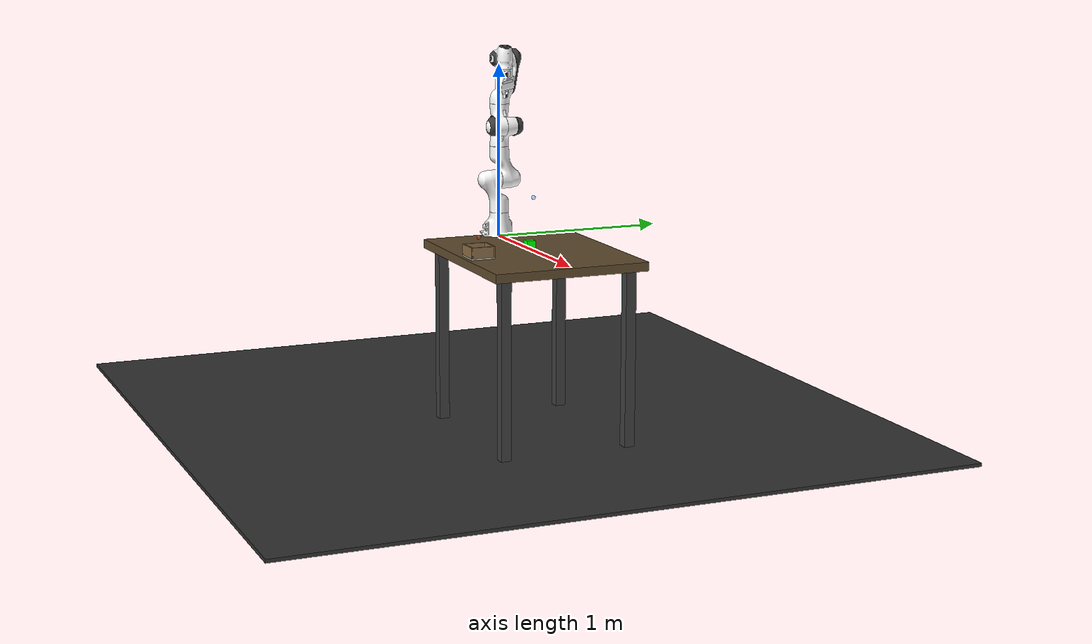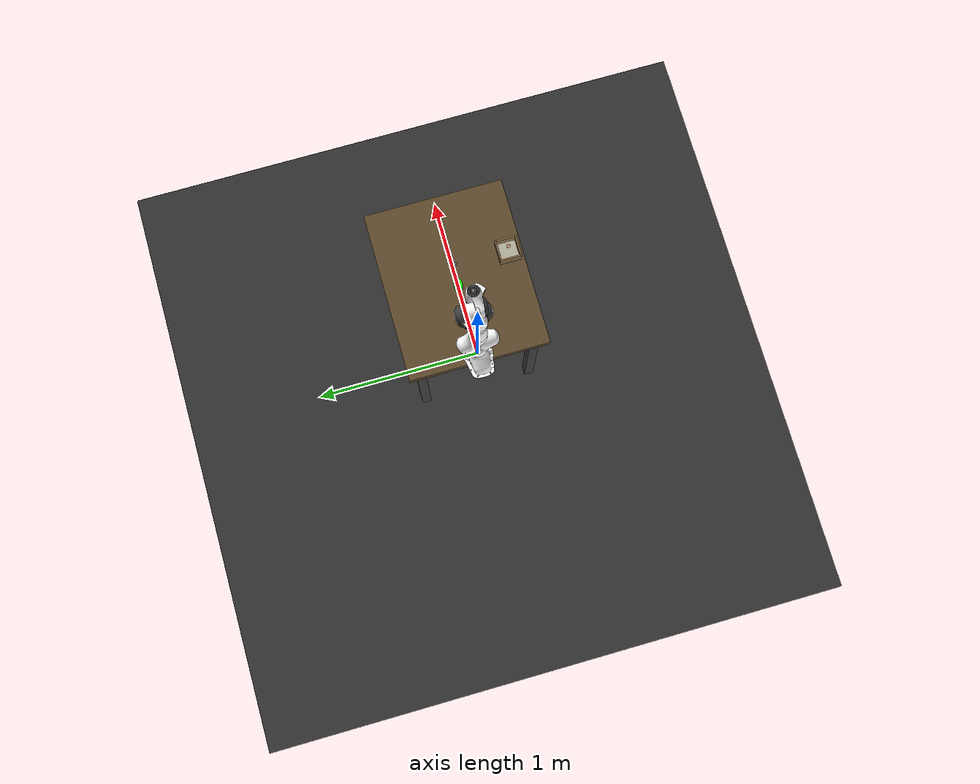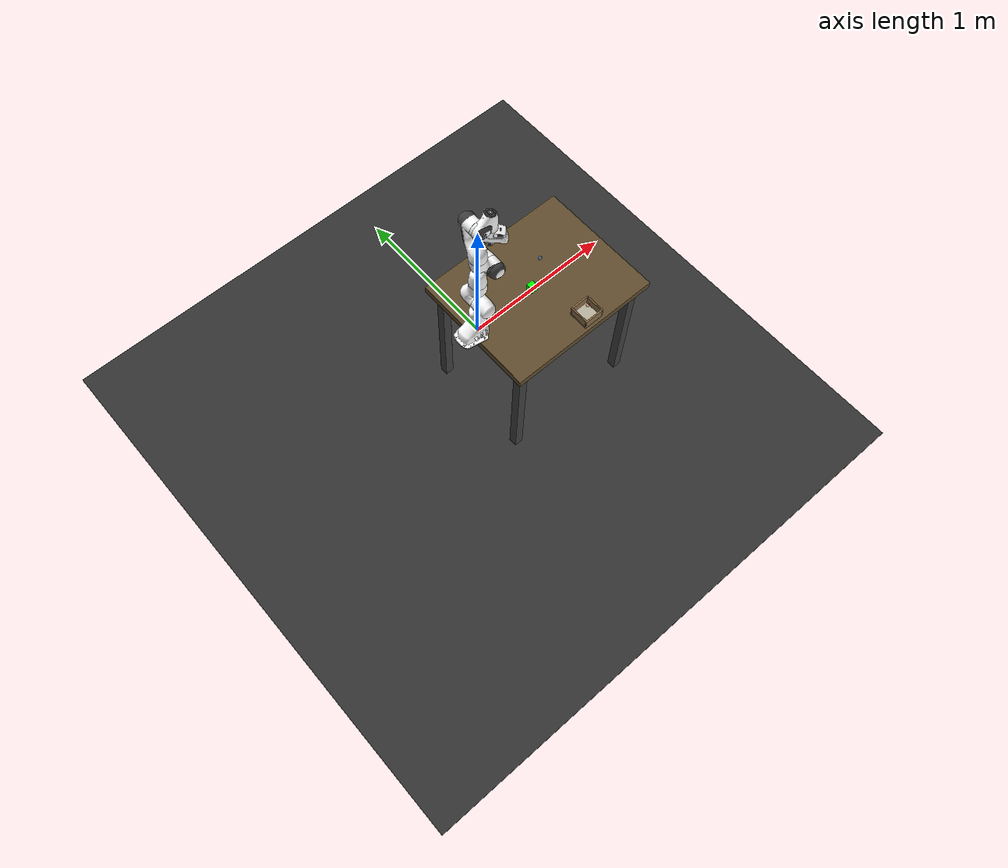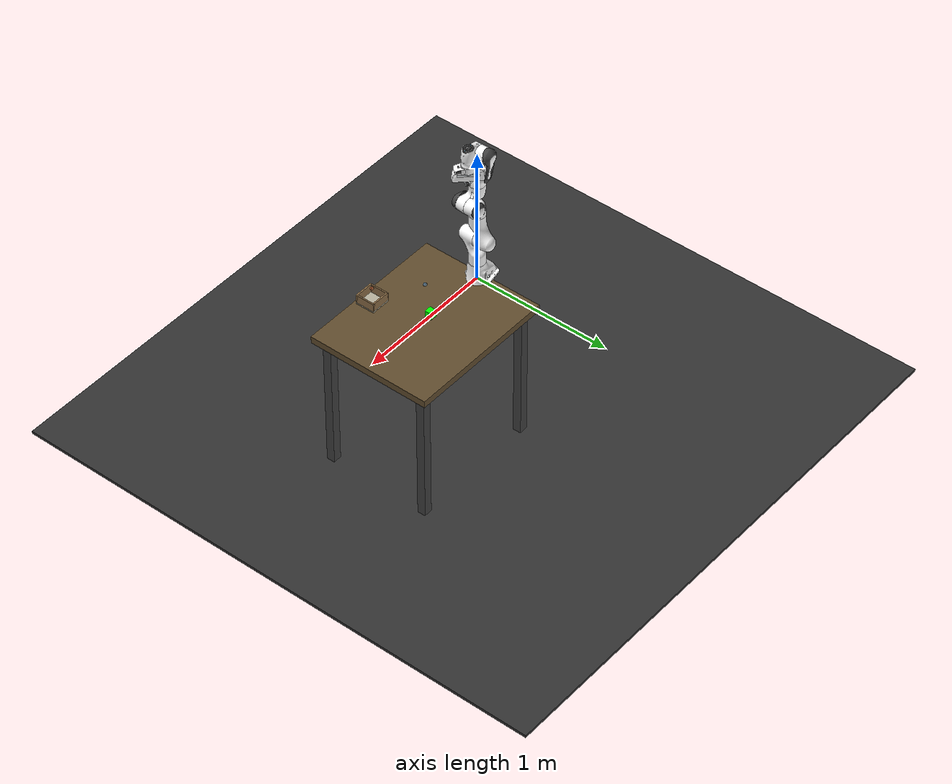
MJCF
<?xml version='1.0' encoding='utf-8'?>
<mujoco model="franka_pick_place">
  <compiler angle="radian" />
  <option integrator="implicitfast" timestep="0.01" gravity="0 0 -9.81" iterations="50" />
  <size nkey="1" />
  <default>
    <default class="panda">
      <material shininess="0.25" />
      <joint range="-2.8973 2.8973" armature="0.1" damping="1" />
      <general ctrlrange="-2.8973 2.8973" forcerange="-87 87" biastype="affine" />
      <default class="finger">
        <joint type="slide" range="0 0.04" />
      </default>
      <default class="visual">
        <geom type="mesh" contype="0" conaffinity="0" group="2" />
      </default>
      <default class="collision">
        <geom type="mesh" group="3" />
        <default class="fingertip_pad_collision_1">
          <geom size="0.0085 0.004 0.0085" type="box" />
        </default>
        <default class="fingertip_pad_collision_2">
          <geom size="0.003 0.002 0.003" type="box" />
        </default>
        <default class="fingertip_pad_collision_3">
          <geom size="0.003 0.002 0.003" type="box" />
        </default>
        <default class="fingertip_pad_collision_4">
          <geom size="0.003 0.002 0.0035" type="box" />
        </default>
        <default class="fingertip_pad_collision_5">
          <geom size="0.003 0.002 0.0035" type="box" />
        </default>
      </default>
    </default>
  </default>
  <asset>
    <material name="white" class="panda" />
    <material name="off_white" class="panda" rgba="0.901961 0.921569 0.929412 1" />
    <material name="black" class="panda" rgba="0.25 0.25 0.25 1" />
    <material name="green" class="panda" rgba="0 1 0 1" />
    <material name="light_blue" class="panda" rgba="0.039216 0.541176 0.780392 1" />
    <mesh name="link0_c" content_type="model/stl" file="../../../../../Downloads/franka_emika_panda/assets/link0.stl" />
    <mesh name="link1_c" content_type="model/stl" file="../../../../../Downloads/franka_emika_panda/assets/link1.stl" />
    <mesh name="link2_c" content_type="model/stl" file="../../../../../Downloads/franka_emika_panda/assets/link2.stl" />
    <mesh name="link3_c" content_type="model/stl" file="../../../../../Downloads/franka_emika_panda/assets/link3.stl" />
    <mesh name="link4_c" content_type="model/stl" file="../../../../../Downloads/franka_emika_panda/assets/link4.stl" />
    <mesh name="link5_c0" content_type="model/obj" file="../../../../../Downloads/franka_emika_panda/assets/link5_collision_0.obj" />
    <mesh name="link5_c1" content_type="model/obj" file="../../../../../Downloads/franka_emika_panda/assets/link5_collision_1.obj" />
    <mesh name="link5_c2" content_type="model/obj" file="../../../../../Downloads/franka_emika_panda/assets/link5_collision_2.obj" />
    <mesh name="link6_c" content_type="model/stl" file="../../../../../Downloads/franka_emika_panda/assets/link6.stl" />
    <mesh name="link7_c" content_type="model/stl" file="../../../../../Downloads/franka_emika_panda/assets/link7.stl" />
    <mesh name="hand_c" content_type="model/stl" file="../../../../../Downloads/franka_emika_panda/assets/hand.stl" />
    <mesh name="link0_0" content_type="model/obj" file="../../../../../Downloads/franka_emika_panda/assets/link0_0.obj" />
    <mesh name="link0_1" content_type="model/obj" file="../../../../../Downloads/franka_emika_panda/assets/link0_1.obj" />
    <mesh name="link0_2" content_type="model/obj" file="../../../../../Downloads/franka_emika_panda/assets/link0_2.obj" />
    <mesh name="link0_3" content_type="model/obj" file="../../../../../Downloads/franka_emika_panda/assets/link0_3.obj" />
    <mesh name="link0_4" content_type="model/obj" file="../../../../../Downloads/franka_emika_panda/assets/link0_4.obj" />
    <mesh name="link0_5" content_type="model/obj" file="../../../../../Downloads/franka_emika_panda/assets/link0_5.obj" />
    <mesh name="link0_7" content_type="model/obj" file="../../../../../Downloads/franka_emika_panda/assets/link0_7.obj" />
    <mesh name="link0_8" content_type="model/obj" file="../../../../../Downloads/franka_emika_panda/assets/link0_8.obj" />
    <mesh name="link0_9" content_type="model/obj" file="../../../../../Downloads/franka_emika_panda/assets/link0_9.obj" />
    <mesh name="link0_10" content_type="model/obj" file="../../../../../Downloads/franka_emika_panda/assets/link0_10.obj" />
    <mesh name="link0_11" content_type="model/obj" file="../../../../../Downloads/franka_emika_panda/assets/link0_11.obj" />
    <mesh name="link1" content_type="model/obj" file="../../../../../Downloads/franka_emika_panda/assets/link1.obj" />
    <mesh name="link2" content_type="model/obj" file="../../../../../Downloads/franka_emika_panda/assets/link2.obj" />
    <mesh name="link3_0" content_type="model/obj" file="../../../../../Downloads/franka_emika_panda/assets/link3_0.obj" />
    <mesh name="link3_1" content_type="model/obj" file="../../../../../Downloads/franka_emika_panda/assets/link3_1.obj" />
    <mesh name="link3_2" content_type="model/obj" file="../../../../../Downloads/franka_emika_panda/assets/link3_2.obj" />
    <mesh name="link3_3" content_type="model/obj" file="../../../../../Downloads/franka_emika_panda/assets/link3_3.obj" />
    <mesh name="link4_0" content_type="model/obj" file="../../../../../Downloads/franka_emika_panda/assets/link4_0.obj" />
    <mesh name="link4_1" content_type="model/obj" file="../../../../../Downloads/franka_emika_panda/assets/link4_1.obj" />
    <mesh name="link4_2" content_type="model/obj" file="../../../../../Downloads/franka_emika_panda/assets/link4_2.obj" />
    <mesh name="link4_3" content_type="model/obj" file="../../../../../Downloads/franka_emika_panda/assets/link4_3.obj" />
    <mesh name="link5_0" content_type="model/obj" file="../../../../../Downloads/franka_emika_panda/assets/link5_0.obj" />
    <mesh name="link5_1" content_type="model/obj" file="../../../../../Downloads/franka_emika_panda/assets/link5_1.obj" />
    <mesh name="link5_2" content_type="model/obj" file="../../../../../Downloads/franka_emika_panda/assets/link5_2.obj" />
    <mesh name="link6_0" content_type="model/obj" file="../../../../../Downloads/franka_emika_panda/assets/link6_0.obj" />
    <mesh name="link6_1" content_type="model/obj" file="../../../../../Downloads/franka_emika_panda/assets/link6_1.obj" />
    <mesh name="link6_2" content_type="model/obj" file="../../../../../Downloads/franka_emika_panda/assets/link6_2.obj" />
    <mesh name="link6_3" content_type="model/obj" file="../../../../../Downloads/franka_emika_panda/assets/link6_3.obj" />
    <mesh name="link6_4" content_type="model/obj" file="../../../../../Downloads/franka_emika_panda/assets/link6_4.obj" />
    <mesh name="link6_5" content_type="model/obj" file="../../../../../Downloads/franka_emika_panda/assets/link6_5.obj" />
    <mesh name="link6_6" content_type="model/obj" file="../../../../../Downloads/franka_emika_panda/assets/link6_6.obj" />
    <mesh name="link6_7" content_type="model/obj" file="../../../../../Downloads/franka_emika_panda/assets/link6_7.obj" />
    <mesh name="link6_8" content_type="model/obj" file="../../../../../Downloads/franka_emika_panda/assets/link6_8.obj" />
    <mesh name="link6_9" content_type="model/obj" file="../../../../../Downloads/franka_emika_panda/assets/link6_9.obj" />
    <mesh name="link6_10" content_type="model/obj" file="../../../../../Downloads/franka_emika_panda/assets/link6_10.obj" />
    <mesh name="link6_11" content_type="model/obj" file="../../../../../Downloads/franka_emika_panda/assets/link6_11.obj" />
    <mesh name="link6_12" content_type="model/obj" file="../../../../../Downloads/franka_emika_panda/assets/link6_12.obj" />
    <mesh name="link6_13" content_type="model/obj" file="../../../../../Downloads/franka_emika_panda/assets/link6_13.obj" />
    <mesh name="link6_14" content_type="model/obj" file="../../../../../Downloads/franka_emika_panda/assets/link6_14.obj" />
    <mesh name="link6_15" content_type="model/obj" file="../../../../../Downloads/franka_emika_panda/assets/link6_15.obj" />
    <mesh name="link6_16" content_type="model/obj" file="../../../../../Downloads/franka_emika_panda/assets/link6_16.obj" />
    <mesh name="link7_0" content_type="model/obj" file="../../../../../Downloads/franka_emika_panda/assets/link7_0.obj" />
    <mesh name="link7_1" content_type="model/obj" file="../../../../../Downloads/franka_emika_panda/assets/link7_1.obj" />
    <mesh name="link7_2" content_type="model/obj" file="../../../../../Downloads/franka_emika_panda/assets/link7_2.obj" />
    <mesh name="link7_3" content_type="model/obj" file="../../../../../Downloads/franka_emika_panda/assets/link7_3.obj" />
    <mesh name="link7_4" content_type="model/obj" file="../../../../../Downloads/franka_emika_panda/assets/link7_4.obj" />
    <mesh name="link7_5" content_type="model/obj" file="../../../../../Downloads/franka_emika_panda/assets/link7_5.obj" />
    <mesh name="link7_6" content_type="model/obj" file="../../../../../Downloads/franka_emika_panda/assets/link7_6.obj" />
    <mesh name="link7_7" content_type="model/obj" file="../../../../../Downloads/franka_emika_panda/assets/link7_7.obj" />
    <mesh name="hand_0" content_type="model/obj" file="../../../../../Downloads/franka_emika_panda/assets/hand_0.obj" />
    <mesh name="hand_1" content_type="model/obj" file="../../../../../Downloads/franka_emika_panda/assets/hand_1.obj" />
    <mesh name="hand_2" content_type="model/obj" file="../../../../../Downloads/franka_emika_panda/assets/hand_2.obj" />
    <mesh name="hand_3" content_type="model/obj" file="../../../../../Downloads/franka_emika_panda/assets/hand_3.obj" />
    <mesh name="hand_4" content_type="model/obj" file="../../../../../Downloads/franka_emika_panda/assets/hand_4.obj" />
    <mesh name="finger_0" content_type="model/obj" file="../../../../../Downloads/franka_emika_panda/assets/finger_0.obj" />
    <mesh name="finger_1" content_type="model/obj" file="../../../../../Downloads/franka_emika_panda/assets/finger_1.obj" />
    <material name="table_mat" rgba="0.38 0.30 0.18 1" />
    <material name="cube_mat" rgba="0.0 1.0 0.0 1" />
    <material name="target_floor_mat" rgba="0.72 0.70 0.62 1" />
    <material name="target_wall_mat" rgba="0.55 0.43 0.28 1" />
  </asset>
  <worldbody>
    <light name="top" pos="0 0 2" dir="0 0 -1" mode="trackcom" />
    <body name="link0" childclass="panda">
      <inertial pos="-0.041018 -0.00014 0.049974" quat="0.00630474 0.751245 0.00741774 0.659952" mass="0.629769" diaginertia="0.00430465 0.00387984 0.00313051" />
      <geom class="visual" material="off_white" mesh="link0_0" />
      <geom class="visual" material="black" mesh="link0_1" />
      <geom class="visual" material="off_white" mesh="link0_2" />
      <geom class="visual" material="black" mesh="link0_3" />
      <geom class="visual" material="off_white" mesh="link0_4" />
      <geom class="visual" material="black" mesh="link0_5" />
      <geom class="visual" material="white" mesh="link0_7" />
      <geom class="visual" material="white" mesh="link0_8" />
      <geom class="visual" material="black" mesh="link0_9" />
      <geom class="visual" material="off_white" mesh="link0_10" />
      <geom class="visual" material="white" mesh="link0_11" />
      <geom class="collision" mesh="link0_c" />
      <body name="link1" pos="0 0 0.333">
        <inertial pos="0.003875 0.002081 -0.04762" quat="0.711549 0.00634377 -0.0131124 0.702485" mass="4.97068" diaginertia="0.707137 0.703435 0.00852456" />
        <joint name="joint1" pos="0 0 0" axis="0 0 1" damping="4" armature="0" />
        <geom class="visual" material="white" mesh="link1" />
        <geom class="collision" mesh="link1_c" />
        <body name="link2" quat="0.707107 -0.707107 0 0">
          <inertial pos="-0.003141 -0.02872 0.003495" quat="-0.168175 0.828366 -0.122878 0.520027" mass="0.646926" diaginertia="0.0310326 0.0283001 0.00273425" />
          <joint name="joint2" pos="0 0 0" axis="0 0 1" range="-1.7628 1.7628" damping="4" armature="0" />
          <geom class="visual" material="white" mesh="link2" />
          <geom class="collision" mesh="link2_c" />
          <body name="link3" pos="0 -0.316 0" quat="0.707107 0.707107 0 0">
            <inertial pos="0.027518 0.039252 -0.066502" quat="0.662769 -0.00678331 0.252053 0.705096" mass="3.2286" diaginertia="0.0415014 0.0414793 0.00124635" />
            <joint name="joint3" pos="0 0 0" axis="0 0 1" damping="4" armature="0" />
            <geom class="visual" material="white" mesh="link3_0" />
            <geom class="visual" material="white" mesh="link3_1" />
            <geom class="visual" material="white" mesh="link3_2" />
            <geom class="visual" material="black" mesh="link3_3" />
            <geom class="collision" mesh="link3_c" />
            <body name="link4" pos="0.0825 0 0" quat="0.707107 0.707107 0 0">
              <inertial pos="-0.05317 0.104419 0.027454" quat="0.65058 0.529822 -0.0962034 0.535518" mass="3.5879" diaginertia="0.0349596 0.0281483 0.0106201" />
              <joint name="joint4" pos="0 0 0" axis="0 0 1" range="-3.0718 -0.0698" damping="4" armature="0" />
              <geom class="visual" material="white" mesh="link4_0" />
              <geom class="visual" material="white" mesh="link4_1" />
              <geom class="visual" material="black" mesh="link4_2" />
              <geom class="visual" material="white" mesh="link4_3" />
              <geom class="collision" mesh="link4_c" />
              <body name="link5" pos="-0.0825 0.384 0" quat="0.707107 -0.707107 0 0">
                <inertial pos="-0.011953 0.041065 -0.038437" quat="0.987313 -0.0121954 0.0719187 -0.141037" mass="1.22595" diaginertia="0.0367625 0.0288531 0.00803437" />
                <joint name="joint5" pos="0 0 0" axis="0 0 1" damping="4" armature="0" />
                <geom class="visual" material="black" mesh="link5_0" />
                <geom class="visual" material="white" mesh="link5_1" />
                <geom class="visual" material="white" mesh="link5_2" />
                <geom class="collision" mesh="link5_c0" />
                <geom class="collision" mesh="link5_c1" />
                <geom class="collision" mesh="link5_c2" />
                <body name="link6" quat="0.707107 0.707107 0 0">
                  <inertial pos="0.060149 -0.014117 -0.010517" quat="0.101075 0.59332 0.0287227 0.798079" mass="1.66656" diaginertia="0.00584276 0.00431037 0.00159787" />
                  <joint name="joint6" pos="0 0 0" axis="0 0 1" range="-0.0175 3.7525" damping="4" armature="0" />
                  <geom class="visual" material="off_white" mesh="link6_0" />
                  <geom class="visual" material="white" mesh="link6_1" />
                  <geom class="visual" material="black" mesh="link6_2" />
                  <geom class="visual" material="white" mesh="link6_3" />
                  <geom class="visual" material="white" mesh="link6_4" />
                  <geom class="visual" material="white" mesh="link6_5" />
                  <geom class="visual" material="white" mesh="link6_6" />
                  <geom class="visual" material="light_blue" mesh="link6_7" />
                  <geom class="visual" material="light_blue" mesh="link6_8" />
                  <geom class="visual" material="black" mesh="link6_9" />
                  <geom class="visual" material="black" mesh="link6_10" />
                  <geom class="visual" material="white" mesh="link6_11" />
                  <geom class="visual" material="green" mesh="link6_12" />
                  <geom class="visual" material="white" mesh="link6_13" />
                  <geom class="visual" material="black" mesh="link6_14" />
                  <geom class="visual" material="black" mesh="link6_15" />
                  <geom class="visual" material="white" mesh="link6_16" />
                  <geom class="collision" mesh="link6_c" />
                  <body name="link7" pos="0.088 0 0" quat="0.707107 0.707107 0 0">
                    <inertial pos="0.010517 -0.004252 0.061597" quat="0.992939 -0.0762041 0.0733595 -0.0537067" mass="0.735522" diaginertia="0.0127345 0.0101055 0.00451803" />
                    <joint name="joint7" pos="0 0 0" axis="0 0 1" damping="4" armature="0" />
                    <geom class="visual" material="white" mesh="link7_0" />
                    <geom class="visual" material="black" mesh="link7_1" />
                    <geom class="visual" material="black" mesh="link7_2" />
                    <geom class="visual" material="black" mesh="link7_3" />
                    <geom class="visual" material="black" mesh="link7_4" />
                    <geom class="visual" material="black" mesh="link7_5" />
                    <geom class="visual" material="black" mesh="link7_6" />
                    <geom class="visual" material="white" mesh="link7_7" />
                    <geom class="collision" mesh="link7_c" />
                    <body name="hand" pos="0 0 0.107" quat="0.92388 0 0 -0.382683">
                      <inertial pos="-0.01 0 0.03" mass="0.73" diaginertia="0.001 0.0025 0.0017" />
                      <geom class="visual" material="off_white" mesh="hand_0" />
                      <geom class="visual" material="black" mesh="hand_1" />
                      <geom class="visual" material="black" mesh="hand_2" />
                      <geom class="visual" material="white" mesh="hand_3" />
                      <geom class="visual" material="off_white" mesh="hand_4" />
                      <geom class="collision" mesh="hand_c" />
                      <body name="left_finger" pos="0 0 0.0584">
                        <inertial pos="0 0 0" mass="0.015" diaginertia="2.375e-06 2.375e-06 7.5e-07" />
                        <joint name="finger_joint1" class="finger" pos="0 0 0" axis="0 1 0" damping="100" armature="0" />
                        <geom class="visual" material="off_white" mesh="finger_0" />
                        <geom class="visual" material="black" mesh="finger_1" />
                        <geom class="collision" mesh="finger_0" />
                        <geom class="fingertip_pad_collision_1" pos="0 0.0055 0.0445" />
                        <geom class="fingertip_pad_collision_2" pos="0.0055 0.002 0.05" />
                        <geom class="fingertip_pad_collision_3" pos="-0.0055 0.002 0.05" />
                        <geom class="fingertip_pad_collision_4" pos="0.0055 0.002 0.0395" />
                        <geom class="fingertip_pad_collision_5" pos="-0.0055 0.002 0.0395" />
                      </body>
                      <body name="right_finger" pos="0 0 0.0584" quat="0 0 0 1">
                        <inertial pos="0 0 0" mass="0.015" diaginertia="2.375e-06 2.375e-06 7.5e-07" />
                        <joint name="finger_joint2" class="finger" pos="0 0 0" axis="0 -1 0" damping="100" armature="0" />
                        <geom class="visual" material="off_white" mesh="finger_0" />
                        <geom class="visual" material="black" mesh="finger_1" />
                        <geom class="collision" mesh="finger_0" />
                        <geom class="fingertip_pad_collision_1" pos="0 -0.0055 0.0445" />
                        <geom class="fingertip_pad_collision_2" pos="0.0055 -0.002 0.05" />
                        <geom class="fingertip_pad_collision_3" pos="-0.0055 -0.002 0.05" />
                        <geom class="fingertip_pad_collision_4" pos="0.0055 -0.002 0.0395" />
                        <geom class="fingertip_pad_collision_5" pos="-0.0055 -0.002 0.0395" />
                      </body>
                    </body>
                  </body>
                </body>
              </body>
            </body>
          </body>
        </body>
      </body>
    </body>
    <light name="sun" mode="fixed" pos="1.0 -1.0 2.0" dir="-0.3 0.2 -1.0" />
    <camera name="overview" pos="1.0 -1.0 0.8" xyaxes="1 0 0 0 0 1" />
    <geom name="ground" type="box" pos="0 0 -1.06" size="2 2 0.01" rgba="0.2 0.2 0.2 1" friction="1 0.01 0.001" contype="1" conaffinity="1" />
    <geom name="table_top" type="box" pos="0.5 0 -0.025" size="0.55 0.45 0.025" rgba="0.38 0.3 0.18 1" friction="1 0.01 0.001" contype="1" conaffinity="1" />
    <geom name="table_leg_front_left" type="box" pos="0.03 0.37 -0.55" size="0.03 0.03 0.5" rgba="0.25 0.25 0.25 1" friction="1 0.01 0.001" contype="1" conaffinity="1" />
    <geom name="table_leg_front_right" type="box" pos="0.03 -0.37 -0.55" size="0.03 0.03 0.5" rgba="0.25 0.25 0.25 1" friction="1 0.01 0.001" contype="1" conaffinity="1" />
    <geom name="table_leg_back_left" type="box" pos="0.97 0.37 -0.55" size="0.03 0.03 0.5" rgba="0.25 0.25 0.25 1" friction="1 0.01 0.001" contype="1" conaffinity="1" />
    <geom name="table_leg_back_right" type="box" pos="0.97 -0.37 -0.55" size="0.03 0.03 0.5" rgba="0.25 0.25 0.25 1" friction="1 0.01 0.001" contype="1" conaffinity="1" />
    <body name="pick_cube" pos="0.45 0 0.025">
      <freejoint name="pick_cube_freejoint" />
      <geom name="pick_cube_geom" type="box" size="0.025 0.025 0.025" rgba="0.0 1.0 0.0 1.0" friction="1 0.01 0.001" contype="1" conaffinity="1" />
    </body>
    <geom name="target_box_floor" type="box" pos="0.58 -0.36 0.005" size="0.07 0.07 0.005" rgba="0.72 0.7 0.62 1" friction="1 0.01 0.001" contype="1" conaffinity="1" />
    <geom name="target_box_left_wall" type="box" pos="0.515 -0.36 0.04" size="0.005 0.07 0.03" rgba="0.55 0.43 0.28 1" friction="1 0.01 0.001" contype="1" conaffinity="1" />
    <geom name="target_box_right_wall" type="box" pos="0.645 -0.36 0.04" size="0.005 0.07 0.03" rgba="0.55 0.43 0.28 1" friction="1 0.01 0.001" contype="1" conaffinity="1" />
    <geom name="target_box_front_wall" type="box" pos="0.58 -0.295 0.04" size="0.07 0.005 0.03" rgba="0.55 0.43 0.28 1" friction="1 0.01 0.001" contype="1" conaffinity="1" />
    <geom name="target_box_back_wall" type="box" pos="0.58 -0.425 0.04" size="0.07 0.005 0.03" rgba="0.55 0.43 0.28 1" friction="1 0.01 0.001" contype="1" conaffinity="1" />
    <site name="waypoint_marker" type="sphere" pos="0.5 0 0.3" size="0.012" rgba="0.2 0.6 1.0 0.4" />
    <site name="goal_marker" type="sphere" pos="0.58 -0.36 0.115" size="0.012" rgba="1.0 0.4 0.2 0.4" />
  </worldbody>
  <contact>
    <exclude body1="link0" body2="link1" />
    <exclude body1="link1" body2="link2" />
    <exclude body1="link1" body2="link3" />
    <exclude body1="link1" body2="link4" />
    <exclude body1="link1" body2="link5" />
    <exclude body1="link1" body2="link6" />
    <exclude body1="link1" body2="link7" />
    <exclude body1="link1" body2="left_finger" />
    <exclude body1="link1" body2="right_finger" />
    <exclude body1="link2" body2="link3" />
    <exclude body1="link2" body2="link4" />
    <exclude body1="link2" body2="link5" />
    <exclude body1="link2" body2="link6" />
    <exclude body1="link2" body2="link7" />
    <exclude body1="link2" body2="left_finger" />
    <exclude body1="link2" body2="right_finger" />
    <exclude body1="link3" body2="link4" />
    <exclude body1="link3" body2="link5" />
    <exclude body1="link3" body2="link6" />
    <exclude body1="link3" body2="link7" />
    <exclude body1="link3" body2="left_finger" />
    <exclude body1="link3" body2="right_finger" />
    <exclude body1="link4" body2="link5" />
    <exclude body1="link4" body2="link6" />
    <exclude body1="link4" body2="link7" />
    <exclude body1="link4" body2="left_finger" />
    <exclude body1="link4" body2="right_finger" />
    <exclude body1="link5" body2="link6" />
    <exclude body1="link5" body2="link7" />
    <exclude body1="link5" body2="left_finger" />
    <exclude body1="link5" body2="right_finger" />
    <exclude body1="link6" body2="link7" />
    <exclude body1="link6" body2="left_finger" />
    <exclude body1="link6" body2="right_finger" />
    <exclude body1="link7" body2="left_finger" />
    <exclude body1="link7" body2="right_finger" />
    <exclude body1="left_finger" body2="right_finger" />
  </contact>
  <keyframe>
    <key name="home" qpos="0 0 0 -1.57079 0 1.57079 -0.7853 0.04 0.04" ctrl="0 0 0 -1.57079 0 1.57079 -0.7853 255" />
  </keyframe>
  <visual>
    <map znear="0.01" zfar="10" />
  </visual>
  <actuator>
    <position name="joint1" joint="joint1" kp="80" ctrllimited="true" ctrlrange="-2.8973 2.8973" forcelimited="true" forcerange="-87 87" />
    <position name="joint2" joint="joint2" kp="80" ctrllimited="true" ctrlrange="-1.7628 1.7628" forcelimited="true" forcerange="-87 87" />
    <position name="joint3" joint="joint3" kp="80" ctrllimited="true" ctrlrange="-2.8973 2.8973" forcelimited="true" forcerange="-87 87" />
    <position name="joint4" joint="joint4" kp="80" ctrllimited="true" ctrlrange="-3.0718 -0.0698" forcelimited="true" forcerange="-87 87" />
    <position name="joint5" joint="joint5" kp="80" ctrllimited="true" ctrlrange="-2.8973 2.8973" forcelimited="true" forcerange="-12 12" />
    <position name="joint6" joint="joint6" kp="80" ctrllimited="true" ctrlrange="-0.0175 3.7525" forcelimited="true" forcerange="-12 12" />
    <position name="joint7" joint="joint7" kp="80" ctrllimited="true" ctrlrange="-2.8973 2.8973" forcelimited="true" forcerange="-12 12" />
    <position name="finger_joint1" joint="finger_joint1" kp="2000" ctrllimited="true" ctrlrange="0 0.04" forcelimited="true" forcerange="-200 200" />
    <position name="finger_joint2" joint="finger_joint2" kp="2000" ctrllimited="true" ctrlrange="0 0.04" forcelimited="true" forcerange="-200 200" />
  </actuator>
</mujoco>
